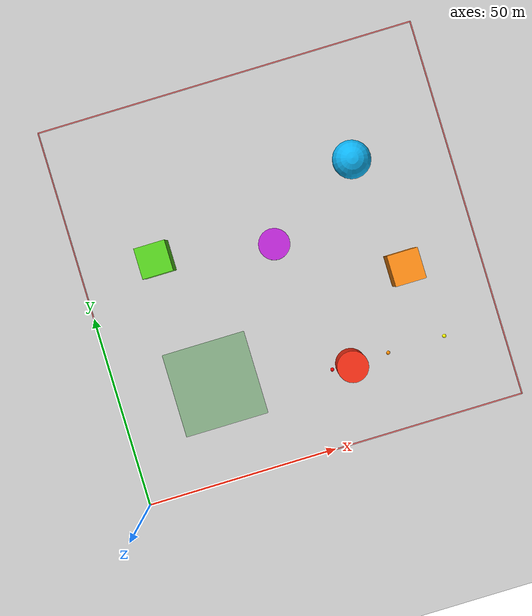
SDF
<?xml version="1.0" encoding="UTF-8"?>
<sdf version="1.9">
  <world name="default">
    <physics type="ode">
      <max_step_size>0.004</max_step_size>
      <real_time_factor>1.0</real_time_factor>
      <real_time_update_rate>250</real_time_update_rate>
    </physics>
    <gravity>0 0 -9.8</gravity>
    <magnetic_field>6e-06 2.3e-05 -4.2e-05</magnetic_field>
    <atmosphere type="adiabatic" />
    <scene>
      <grid>false</grid>
      <ambient>0.4 0.4 0.4 1</ambient>
      <background>0.7 0.7 0.7 1</background>
      <shadows>true</shadows>
    </scene>

    <!-- Ground Plane (100x100) -->
    <model name="ground_plane">
      <static>true</static>
      <pose>50 50 0 0 0 0</pose>
      <link name="link">
        <collision name="collision">
          <geometry>
            <plane>
              <normal>0 0 1</normal>
              <size>100 100</size>
            </plane>
          </geometry>
          <surface><friction><ode /></friction><bounce /><contact /></surface>
        </collision>
        <visual name="visual">
          <geometry>
            <plane>
              <normal>0 0 1</normal>
              <size>100 100</size>
            </plane>
          </geometry>
          <material>
            <ambient>0.8 0.8 0.8 1</ambient>
            <diffuse>0.8 0.8 0.8 1</diffuse>
            <specular>0.8 0.8 0.8 1</specular>
          </material>
        </visual>
      </link>
    </model>

    <!-- Spawn Zone Pad: 3x3 grid at (15,15)-(35,35), 10m spacing -->
    <!-- Visual marker only — no collision -->
    <model name="spawn_zone_pad">
      <static>true</static>
      <pose>25 25 0.01 0 0 0</pose>
      <link name="link">
        <visual name="visual">
          <geometry><plane><normal>0 0 1</normal><size>22 22</size></plane></geometry>
          <material>
            <ambient>0.15 0.55 0.15 0.4</ambient>
            <diffuse>0.15 0.55 0.15 0.4</diffuse>
          </material>
        </visual>
      </link>
    </model>

    <!-- Visual Boundary Walls (100m x 100m) -->
    <model name="boundary_north">
      <static>true</static><pose>50 100 0.5 0 0 0</pose>
      <link name="link">
        <visual name="visual"><geometry><box><size>100 0.2 1.0</size></box></geometry>
        <material><ambient>1 0 0 0.5</ambient><diffuse>1 0 0 0.5</diffuse></material></visual>
      </link>
    </model>
    <model name="boundary_south">
      <static>true</static><pose>50 0 0.5 0 0 0</pose>
      <link name="link">
        <visual name="visual"><geometry><box><size>100 0.2 1.0</size></box></geometry>
        <material><ambient>1 0 0 0.5</ambient><diffuse>1 0 0 0.5</diffuse></material></visual>
      </link>
    </model>
    <model name="boundary_east">
      <static>true</static><pose>100 50 0.5 0 0 0</pose>
      <link name="link">
        <visual name="visual"><geometry><box><size>0.2 100 1.0</size></box></geometry>
        <material><ambient>1 0 0 0.5</ambient><diffuse>1 0 0 0.5</diffuse></material></visual>
      </link>
    </model>
    <model name="boundary_west">
      <static>true</static><pose>0 50 0.5 0 0 0</pose>
      <link name="link">
        <visual name="visual"><geometry><box><size>0.2 100 1.0</size></box></geometry>
        <material><ambient>1 0 0 0.5</ambient><diffuse>1 0 0 0.5</diffuse></material></visual>
      </link>
    </model>

    <!--
      OBSTACLES — all placed OUTSIDE the clear zone (5,5)-(45,45).
      The spawn grid is (15,15)-(35,35). All obstacles are at x>=55 or y>=55.
    -->
    <model name="obstacle_1">
      <static>true</static>
      <pose>60 20 6 0 0 0</pose>
      <link name="obstacle">
        <collision name="collision">
          <geometry><cylinder><radius>4</radius><length>12</length></cylinder></geometry>
        </collision>
        <visual name="visual">
          <geometry><cylinder><radius>4</radius><length>12</length></cylinder></geometry>
          <material>
            <ambient>0.8 0.12 0.05 1</ambient>
            <diffuse>0.95 0.18 0.08 1</diffuse>
            <specular>0.2 0.2 0.2 1</specular>
          </material>
        </visual>
      </link>
    </model>

    <model name="obstacle_2">
      <static>true</static>
      <pose>80 40 6 0 0 0</pose>
      <link name="obstacle">
        <collision name="collision">
          <geometry><box><size>8 8 12</size></box></geometry>
        </collision>
        <visual name="visual">
          <geometry><box><size>8 8 12</size></box></geometry>
          <material>
            <ambient>0.85 0.42 0.04 1</ambient>
            <diffuse>1 0.55 0.08 1</diffuse>
            <specular>0.2 0.2 0.2 1</specular>
          </material>
        </visual>
      </link>
    </model>

    <model name="obstacle_3">
      <static>true</static>
      <pose>75 70 6 0 0 0</pose>
      <link name="obstacle">
        <collision name="collision">
          <geometry><sphere><radius>5</radius></sphere></geometry>
        </collision>
        <visual name="visual">
          <geometry><sphere><radius>5</radius></sphere></geometry>
          <material>
            <ambient>0.04 0.55 0.75 1</ambient>
            <diffuse>0.05 0.7 0.95 1</diffuse>
            <specular>0.2 0.2 0.2 1</specular>
          </material>
        </visual>
      </link>
    </model>

    <model name="obstacle_4">
      <static>true</static>
      <pose>20 60 6 0 0 0</pose>
      <link name="obstacle">
        <collision name="collision">
          <geometry><box><size>8 8 12</size></box></geometry>
        </collision>
        <visual name="visual">
          <geometry><box><size>8 8 12</size></box></geometry>
          <material>
            <ambient>0.25 0.65 0.1 1</ambient>
            <diffuse>0.35 0.85 0.12 1</diffuse>
            <specular>0.2 0.2 0.2 1</specular>
          </material>
        </visual>
      </link>
    </model>

    <model name="obstacle_5">
      <static>true</static>
      <pose>50 55 6 0 0 0</pose>
      <link name="obstacle">
        <collision name="collision">
          <geometry><cylinder><radius>4</radius><length>12</length></cylinder></geometry>
        </collision>
        <visual name="visual">
          <geometry><cylinder><radius>4</radius><length>12</length></cylinder></geometry>
          <material>
            <ambient>0.6 0.1 0.65 1</ambient>
            <diffuse>0.75 0.15 0.85 1</diffuse>
            <specular>0.2 0.2 0.2 1</specular>
          </material>
        </visual>
      </link>
    </model>

    <!-- POI-1  (55, 20) priority=3 RED — right side, south -->
    <model name="poi_marker_POI-1">
      <static>true</static><pose>55 20 0.75 0 0 0</pose>
      <link name="link">
        <visual name="pole"><geometry><cylinder><radius>0.15</radius><length>1.5</length></cylinder></geometry><material><ambient>1 0 0 1</ambient><diffuse>1 0 0 1</diffuse></material></visual>
        <visual name="ball"><pose>0 0 0.9 0 0 0</pose><geometry><sphere><radius>0.5</radius></sphere></geometry><material><ambient>1 0 0 1</ambient><diffuse>1 0 0 1</diffuse></material></visual>
      </link>
    </model>

    <!-- POI-2  (70, 20) priority=2 ORANGE -->
    <model name="poi_marker_POI-2">
      <static>true</static><pose>70 20 0.75 0 0 0</pose>
      <link name="link">
        <visual name="pole"><geometry><cylinder><radius>0.15</radius><length>1.5</length></cylinder></geometry><material><ambient>1 0.55 0 1</ambient><diffuse>1 0.55 0 1</diffuse></material></visual>
        <visual name="ball"><pose>0 0 0.9 0 0 0</pose><geometry><sphere><radius>0.5</radius></sphere></geometry><material><ambient>1 0.55 0 1</ambient><diffuse>1 0.55 0 1</diffuse></material></visual>
      </link>
    </model>

    <!-- POI-3  (85, 20) priority=1 YELLOW -->
    <model name="poi_marker_POI-3">
      <static>true</static><pose>85 20 0.75 0 0 0</pose>
      <link name="link">
        <visual name="pole"><geometry><cylinder><radius>0.15</radius><length>1.5</length></cylinder></geometry><material><ambient>1 1 0 1</ambient><diffuse>1 1 0 1</diffuse></material></visual>
        <visual name="ball"><pose>0 0 0.9 0 0 0</pose><geometry><sphere><radius>0.5</radius></sphere></geometry><material><ambient>1 1 0 1</ambient><diffuse>1 1 0 1</diffuse></material></visual>
      </link>
    </model>
    <!-- GCS base marker at (0,0) -->
    <model name="gcs_marker">
      <static>true</static><pose>0 0 1.5 0 0 0</pose>
      <link name="link">
        <visual name="tower">
          <geometry><cylinder><radius>0.4</radius><length>3.0</length></cylinder></geometry>
          <material><ambient>0 0 0 1</ambient><diffuse>0 0 0 1</diffuse></material>
        </visual>
      </link>
    </model>

    <!-- Lighting & Coordinates -->
    <light name="sunUTC" type="directional">
      <pose>0 0 500 0 0 0</pose>
      <cast_shadows>true</cast_shadows>
      <intensity>1</intensity>
      <direction>0.001 0.625 -0.78</direction>
      <diffuse>0.904 0.904 0.904 1</diffuse>
      <specular>0.271 0.271 0.271 1</specular>
      <attenuation>
        <range>2000</range>
        <linear>0</linear>
        <constant>1</constant>
        <quadratic>0</quadratic>
      </attenuation>
      <spot>
        <inner_angle>0</inner_angle>
        <outer_angle>0</outer_angle>
        <falloff>0</falloff>
      </spot>
    </light>
    <spherical_coordinates>
      <surface_model>EARTH_WGS84</surface_model>
      <world_frame_orientation>ENU</world_frame_orientation>
      <latitude_deg>47.397971057728974</latitude_deg>
      <longitude_deg>8.546163739800146</longitude_deg>
      <elevation>0</elevation>
    </spherical_coordinates>
  </world>
</sdf>
